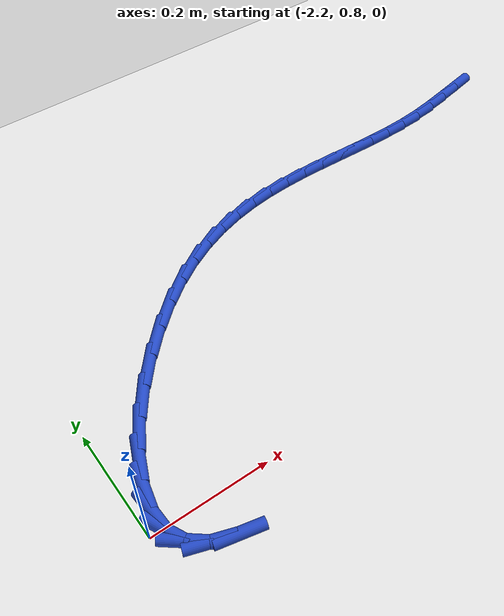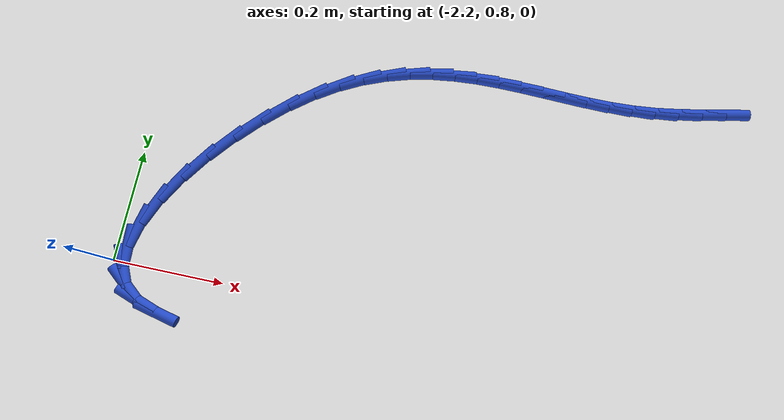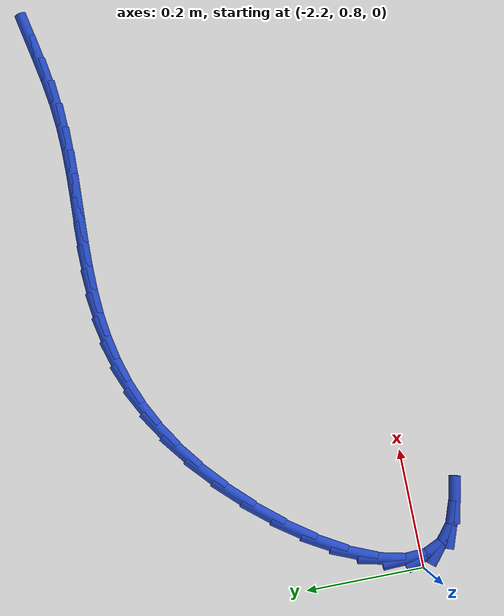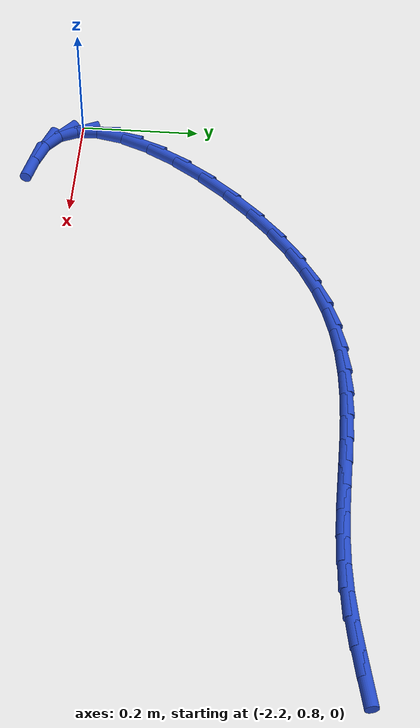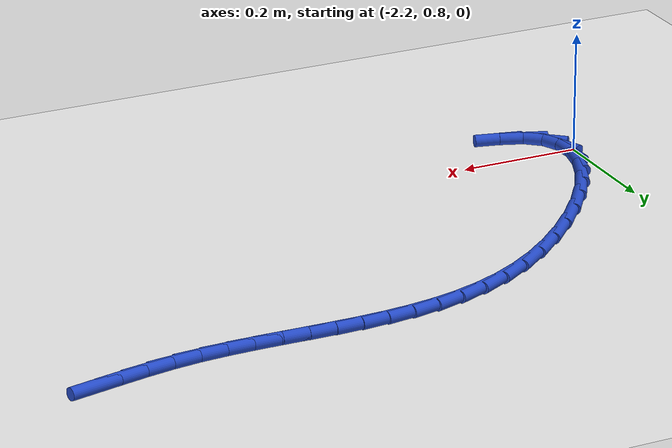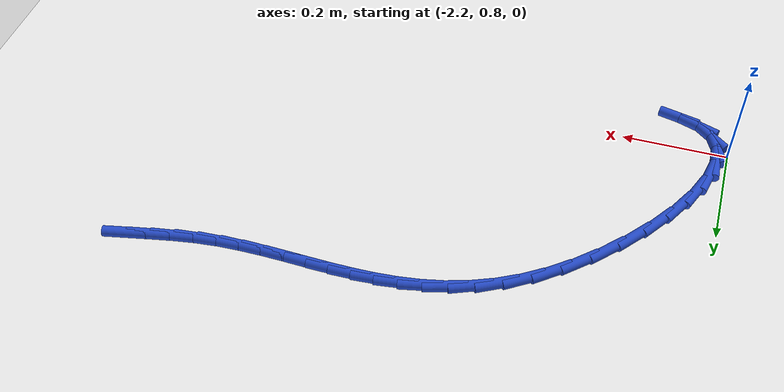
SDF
<sdf version="1.6">
 <world name="default">
  <model name="ground_plane">
   <static>1</static>
   <link name="link">
    <collision name="collision">
     <geometry><plane><normal>0 0 1</normal><size>100 100</size></plane></geometry>
     <surface><friction><ode><mu>100</mu><mu2>50</mu2></ode></friction></surface>
    </collision>
    <visual name="visual">
     <cast_shadows>0</cast_shadows>
     <geometry><plane><normal>0 0 1</normal><size>100 100</size></plane></geometry>
     <material>
      <script><uri>file://media/materials/scripts/gazebo.material</uri><name>Gazebo/WhiteGlow</name></script>
     </material>
    </visual>
   </link>
  </model>
  <model name="line">
   <link name="link_45">
    <pose>-1.1762542335444268 1.2874353338460396 0.01 0 1.57 0.2019211940629193</pose>
    <collision name="collision">
     <geometry><cylinder><radius>0.01</radius><length>0.08</length></cylinder></geometry>
    </collision>
    <visual name="visual">
     <material>
      <script><name>Gazebo/Blue</name><uri>file://media/materials/scripts/gazebo.material</uri></script>
     </material>
     <geometry><cylinder><radius>0.01</radius><length>0.08</length></cylinder></geometry>
    </visual>
   </link>
   <link name="link_46">
    <pose>-1.2188983931890083 1.2787056071677696 0.01 0 1.57 0.19076615344599673</pose>
    <collision name="collision">
     <geometry><cylinder><radius>0.01</radius><length>0.08</length></cylinder></geometry>
    </collision>
    <visual name="visual">
     <material>
      <script><name>Gazebo/Blue</name><uri>file://media/materials/scripts/gazebo.material</uri></script>
     </material>
     <geometry><cylinder><radius>0.01</radius><length>0.08</length></cylinder></geometry>
    </visual>
   </link>
   <link name="link_47">
    <pose>-1.2615606739503331 1.2704669044578945 0.01 0 1.57 0.1557961887127019</pose>
    <collision name="collision">
     <geometry><cylinder><radius>0.01</radius><length>0.08</length></cylinder></geometry>
    </collision>
    <visual name="visual">
     <material>
      <script><name>Gazebo/Blue</name><uri>file://media/materials/scripts/gazebo.material</uri></script>
     </material>
     <geometry><cylinder><radius>0.01</radius><length>0.08</length></cylinder></geometry>
    </visual>
   </link>
   <link name="link_48">
    <pose>-1.3040651042080018 1.2637907732531186 0.01 0 1.57 0.09903551278149271</pose>
    <collision name="collision">
     <geometry><cylinder><radius>0.01</radius><length>0.08</length></cylinder></geometry>
    </collision>
    <visual name="visual">
     <material>
      <script><name>Gazebo/Blue</name><uri>file://media/materials/scripts/gazebo.material</uri></script>
     </material>
     <geometry><cylinder><radius>0.01</radius><length>0.08</length></cylinder></geometry>
    </visual>
   </link>
   <link name="link_49">
    <pose>-1.3462566678803733 1.259598595467283 0.01 0 1.57 0.04440557780511268</pose>
    <collision name="collision">
     <geometry><cylinder><radius>0.01</radius><length>0.08</length></cylinder></geometry>
    </collision>
    <visual name="visual">
     <material>
      <script><name>Gazebo/Blue</name><uri>file://media/materials/scripts/gazebo.material</uri></script>
     </material>
     <geometry><cylinder><radius>0.01</radius><length>0.08</length></cylinder></geometry>
    </visual>
   </link>
   <link name="link_50">
    <pose>-1.3881301969986182 1.257737954079364 0.01 0 1.57 0.0035818226013987716</pose>
    <collision name="collision">
     <geometry><cylinder><radius>0.01</radius><length>0.08</length></cylinder></geometry>
    </collision>
    <visual name="visual">
     <material>
      <script><name>Gazebo/Blue</name><uri>file://media/materials/scripts/gazebo.material</uri></script>
     </material>
     <geometry><cylinder><radius>0.01</radius><length>0.08</length></cylinder></geometry>
    </visual>
   </link>
   <link name="link_51">
    <pose>-1.4297457683224306 1.257588893847972 0.01 0 1.57 -0.022707000567354595</pose>
    <collision name="collision">
     <geometry><cylinder><radius>0.01</radius><length>0.08</length></cylinder></geometry>
    </collision>
    <visual name="visual">
     <material>
      <script><name>Gazebo/Blue</name><uri>file://media/materials/scripts/gazebo.material</uri></script>
     </material>
     <geometry><cylinder><radius>0.01</radius><length>0.08</length></cylinder></geometry>
    </visual>
   </link>
   <link name="link_52">
    <pose>-1.4711637274382843 1.2585295331416808 0.01 0 1.57 -0.03410579986759467</pose>
    <collision name="collision">
     <geometry><cylinder><radius>0.01</radius><length>0.08</length></cylinder></geometry>
    </collision>
    <visual name="visual">
     <material>
      <script><name>Gazebo/Blue</name><uri>file://media/materials/scripts/gazebo.material</uri></script>
     </material>
     <geometry><cylinder><radius>0.01</radius><length>0.08</length></cylinder></geometry>
    </visual>
   </link>
   <link name="link_53">
    <pose>-1.5124444199326534 1.2599379903290653 0.01 0 1.57 -0.030434256133795114</pose>
    <collision name="collision">
     <geometry><cylinder><radius>0.01</radius><length>0.08</length></cylinder></geometry>
    </collision>
    <visual name="visual">
     <material>
      <script><name>Gazebo/Blue</name><uri>file://media/materials/scripts/gazebo.material</uri></script>
     </material>
     <geometry><cylinder><radius>0.01</radius><length>0.08</length></cylinder></geometry>
    </visual>
   </link>
   <link name="link_54">
    <pose>-1.5536481913920124 1.2611923837787014 0.01 0 1.57 -0.011615905128925012</pose>
    <collision name="collision">
     <geometry><cylinder><radius>0.01</radius><length>0.08</length></cylinder></geometry>
    </collision>
    <visual name="visual">
     <material>
      <script><name>Gazebo/Blue</name><uri>file://media/materials/scripts/gazebo.material</uri></script>
     </material>
     <geometry><cylinder><radius>0.01</radius><length>0.08</length></cylinder></geometry>
    </visual>
   </link>
   <link name="link_55">
    <pose>-1.5948353874028358 1.2616708318591636 0.01 0 1.57 0.02229456827886335</pose>
    <collision name="collision">
     <geometry><cylinder><radius>0.01</radius><length>0.08</length></cylinder></geometry>
    </collision>
    <visual name="visual">
     <material>
      <script><name>Gazebo/Blue</name><uri>file://media/materials/scripts/gazebo.material</uri></script>
     </material>
     <geometry><cylinder><radius>0.01</radius><length>0.08</length></cylinder></geometry>
    </visual>
   </link>
   <link name="link_56">
    <pose>-1.6360663535515962 1.2607514529390267 0.01 0 1.57 0.0709844827161357</pose>
    <collision name="collision">
     <geometry><cylinder><radius>0.01</radius><length>0.08</length></cylinder></geometry>
    </collision>
    <visual name="visual">
     <material>
      <script><name>Gazebo/Blue</name><uri>file://media/materials/scripts/gazebo.material</uri></script>
     </material>
     <geometry><cylinder><radius>0.01</radius><length>0.08</length></cylinder></geometry>
    </visual>
   </link>
   <link name="link_57">
    <pose>-1.6774014354247688 1.2578123653868658 0.01 0 1.57 0.1336737220131901</pose>
    <collision name="collision">
     <geometry><cylinder><radius>0.01</radius><length>0.08</length></cylinder></geometry>
    </collision>
    <visual name="visual">
     <material>
      <script><name>Gazebo/Blue</name><uri>file://media/materials/scripts/gazebo.material</uri></script>
     </material>
     <geometry><cylinder><radius>0.01</radius><length>0.08</length></cylinder></geometry>
    </visual>
   </link>
   <link name="link_58">
    <pose>-1.7189009786088283 1.2522316875712565 0.01 0 1.57 0.20887454952535145</pose>
    <collision name="collision">
     <geometry><cylinder><radius>0.01</radius><length>0.08</length></cylinder></geometry>
    </collision>
    <visual name="visual">
     <material>
      <script><name>Gazebo/Blue</name><uri>file://media/materials/scripts/gazebo.material</uri></script>
     </material>
     <geometry><cylinder><radius>0.01</radius><length>0.08</length></cylinder></geometry>
    </visual>
   </link>
   <link name="link_59">
    <pose>-1.7606253286902478 1.2433875378607735 0.01 0 1.57 0.2942204142676285</pose>
    <collision name="collision">
     <geometry><cylinder><radius>0.01</radius><length>0.08</length></cylinder></geometry>
    </collision>
    <visual name="visual">
     <material>
      <script><name>Gazebo/Blue</name><uri>file://media/materials/scripts/gazebo.material</uri></script>
     </material>
     <geometry><cylinder><radius>0.01</radius><length>0.08</length></cylinder></geometry>
    </visual>
   </link>
   <link name="link_60">
    <pose>-1.802634831255502 1.230658034623992 0.01 0 1.57 0.3864908733762169</pose>
    <collision name="collision">
     <geometry><cylinder><radius>0.01</radius><length>0.08</length></cylinder></geometry>
    </collision>
    <visual name="visual">
     <material>
      <script><name>Gazebo/Blue</name><uri>file://media/materials/scripts/gazebo.material</uri></script>
     </material>
     <geometry><cylinder><radius>0.01</radius><length>0.08</length></cylinder></geometry>
    </visual>
   </link>
   <link name="link_61">
    <pose>-1.8449898318910651 1.213421296229487 0.01 0 1.57 0.4819133588384118</pose>
    <collision name="collision">
     <geometry><cylinder><radius>0.01</radius><length>0.08</length></cylinder></geometry>
    </collision>
    <visual name="visual">
     <material>
      <script><name>Gazebo/Blue</name><uri>file://media/materials/scripts/gazebo.material</uri></script>
     </material>
     <geometry><cylinder><radius>0.01</radius><length>0.08</length></cylinder></geometry>
    </visual>
   </link>
   <link name="link_62">
    <pose>-1.8877506761834104 1.1910554410458334 0.01 0 1.57 0.5766887256138101</pose>
    <collision name="collision">
     <geometry><cylinder><radius>0.01</radius><length>0.08</length></cylinder></geometry>
    </collision>
    <visual name="visual">
     <material>
      <script><name>Gazebo/Blue</name><uri>file://media/materials/scripts/gazebo.material</uri></script>
     </material>
     <geometry><cylinder><radius>0.01</radius><length>0.08</length></cylinder></geometry>
    </visual>
   </link>
   <link name="link_63">
    <pose>-1.9309777093081482 1.1629385880186054 0.01 0 1.57 0.665396361926923</pose>
    <collision name="collision">
     <geometry><cylinder><radius>0.01</radius><length>0.08</length></cylinder></geometry>
    </collision>
    <visual name="visual">
     <material>
      <script><name>Gazebo/Blue</name><uri>file://media/materials/scripts/gazebo.material</uri></script>
     </material>
     <geometry><cylinder><radius>0.01</radius><length>0.08</length></cylinder></geometry>
    </visual>
   </link>
   <link name="link_64">
    <pose>-1.9744852148377674 1.1287944126287217 0.01 0 1.57 0.7421518401114799</pose>
    <collision name="collision">
     <geometry><cylinder><radius>0.01</radius><length>0.08</length></cylinder></geometry>
    </collision>
    <visual name="visual">
     <material>
      <script><name>Gazebo/Blue</name><uri>file://media/materials/scripts/gazebo.material</uri></script>
     </material>
     <geometry><cylinder><radius>0.01</radius><length>0.08</length></cylinder></geometry>
    </visual>
   </link>
   <link name="link_65">
    <pose>-2.0171380439547075 1.0896799254369893 0.01 0 1.57 0.8127211256288346</pose>
    <collision name="collision">
     <geometry><cylinder><radius>0.01</radius><length>0.08</length></cylinder></geometry>
    </collision>
    <visual name="visual">
     <material>
      <script><name>Gazebo/Blue</name><uri>file://media/materials/scripts/gazebo.material</uri></script>
     </material>
     <geometry><cylinder><radius>0.01</radius><length>0.08</length></cylinder></geometry>
    </visual>
   </link>
   <link name="link_66">
    <pose>-2.05757208751583 1.0469736773657985 0.01 0 1.57 0.8837498525271367</pose>
    <collision name="collision">
     <geometry><cylinder><radius>0.01</radius><length>0.08</length></cylinder></geometry>
    </collision>
    <visual name="visual">
     <material>
      <script><name>Gazebo/Blue</name><uri>file://media/materials/scripts/gazebo.material</uri></script>
     </material>
     <geometry><cylinder><radius>0.01</radius><length>0.08</length></cylinder></geometry>
    </visual>
   </link>
   <link name="link_67">
    <pose>-2.0944232363779944 1.0020542193375408 0.01 0 1.57 0.9618876954355615</pose>
    <collision name="collision">
     <geometry><cylinder><radius>0.01</radius><length>0.08</length></cylinder></geometry>
    </collision>
    <visual name="visual">
     <material>
      <script><name>Gazebo/Blue</name><uri>file://media/materials/scripts/gazebo.material</uri></script>
     </material>
     <geometry><cylinder><radius>0.01</radius><length>0.08</length></cylinder></geometry>
    </visual>
   </link>
   <link name="link_68">
    <pose>-2.126327381398061 0.9563001022746064 0.01 0 1.57 1.0556843361926722</pose>
    <collision name="collision">
     <geometry><cylinder><radius>0.01</radius><length>0.08</length></cylinder></geometry>
    </collision>
    <visual name="visual">
     <material>
      <script><name>Gazebo/Blue</name><uri>file://media/materials/scripts/gazebo.material</uri></script>
     </material>
     <geometry><cylinder><radius>0.01</radius><length>0.08</length></cylinder></geometry>
    </visual>
   </link>
   <link name="link_69">
    <pose>-2.151920413432891 0.9110898770993847 0.01 0 1.57 1.178345258063743</pose>
    <collision name="collision">
     <geometry><cylinder><radius>0.01</radius><length>0.08</length></cylinder></geometry>
    </collision>
    <visual name="visual">
     <material>
      <script><name>Gazebo/Blue</name><uri>file://media/materials/scripts/gazebo.material</uri></script>
     </material>
     <geometry><cylinder><radius>0.01</radius><length>0.08</length></cylinder></geometry>
    </visual>
   </link>
   <link name="link_70">
    <pose>-2.1698382233393447 0.8678020947342681 0.01 0 1.57 1.352305513260158</pose>
    <collision name="collision">
     <geometry><cylinder><radius>0.01</radius><length>0.08</length></cylinder></geometry>
    </collision>
    <visual name="visual">
     <material>
      <script><name>Gazebo/Blue</name><uri>file://media/materials/scripts/gazebo.material</uri></script>
     </material>
     <geometry><cylinder><radius>0.01</radius><length>0.08</length></cylinder></geometry>
    </visual>
   </link>
   <link name="link_71">
    <pose>-2.1787167019742815 0.8278153061016456 0.01 0 1.57 -1.527631967111814</pose>
    <collision name="collision">
     <geometry><cylinder><radius>0.01</radius><length>0.08</length></cylinder></geometry>
    </collision>
    <visual name="visual">
     <material>
      <script><name>Gazebo/Blue</name><uri>file://media/materials/scripts/gazebo.material</uri></script>
     </material>
     <geometry><cylinder><radius>0.01</radius><length>0.08</length></cylinder></geometry>
    </visual>
   </link>
   <link name="link_72">
    <pose>-2.177191740194563 0.7925080621239089 0.01 0 1.57 -1.1442412629792813</pose>
    <collision name="collision">
     <geometry><cylinder><radius>0.01</radius><length>0.08</length></cylinder></geometry>
    </collision>
    <visual name="visual">
     <material>
      <script><name>Gazebo/Blue</name><uri>file://media/materials/scripts/gazebo.material</uri></script>
     </material>
     <geometry><cylinder><radius>0.01</radius><length>0.08</length></cylinder></geometry>
    </visual>
   </link>
   <link name="link_73">
    <pose>-2.1638992288570504 0.7632589137234482 0.01 0 1.57 -0.6900828399752187</pose>
    <collision name="collision">
     <geometry><cylinder><radius>0.01</radius><length>0.08</length></cylinder></geometry>
    </collision>
    <visual name="visual">
     <material>
      <script><name>Gazebo/Blue</name><uri>file://media/materials/scripts/gazebo.material</uri></script>
     </material>
     <geometry><cylinder><radius>0.01</radius><length>0.08</length></cylinder></geometry>
    </visual>
   </link>
   <link name="link_74">
    <pose>-2.1374750588186027 0.7414464118226538 0.01 0 1.57 -0.33874433907926044</pose>
    <collision name="collision">
     <geometry><cylinder><radius>0.01</radius><length>0.08</length></cylinder></geometry>
    </collision>
    <visual name="visual">
     <material>
      <script><name>Gazebo/Blue</name><uri>file://media/materials/scripts/gazebo.material</uri></script>
     </material>
     <geometry><cylinder><radius>0.01</radius><length>0.08</length></cylinder></geometry>
    </visual>
   </link>
   <link name="link_75">
    <pose>-2.098038522043364 0.7275519449254728 0.01 0 1.57 -0.22618708230960752</pose>
    <collision name="collision">
     <geometry><cylinder><radius>0.01</radius><length>0.08</length></cylinder></geometry>
    </collision>
    <visual name="visual">
     <material>
      <script><name>Gazebo/Blue</name><uri>file://media/materials/scripts/gazebo.material</uri></script>
     </material>
     <geometry><cylinder><radius>0.01</radius><length>0.08</length></cylinder></geometry>
    </visual>
   </link>
  </model>
 </world>
</sdf>
